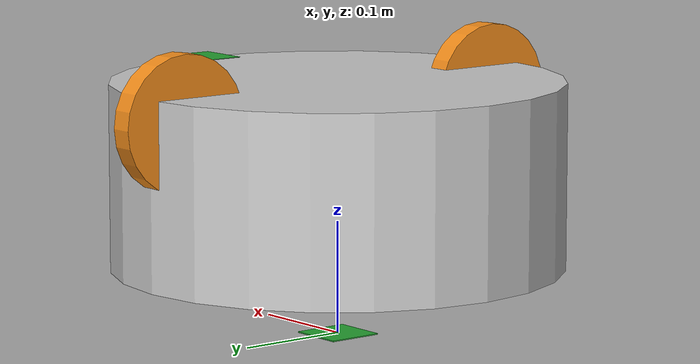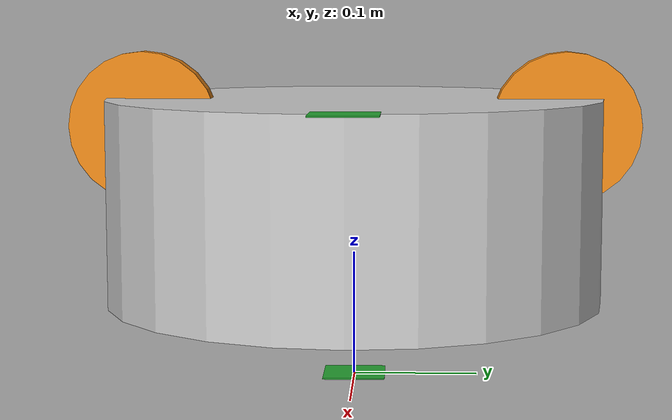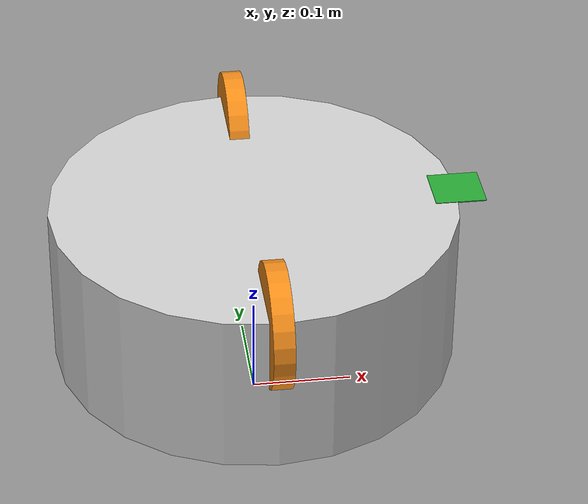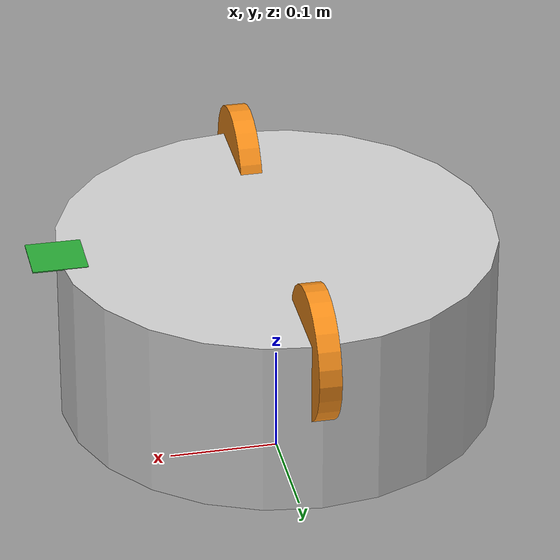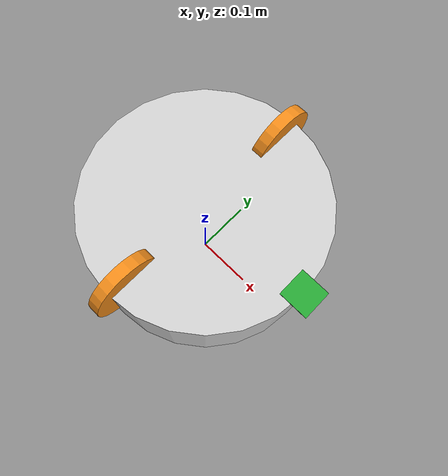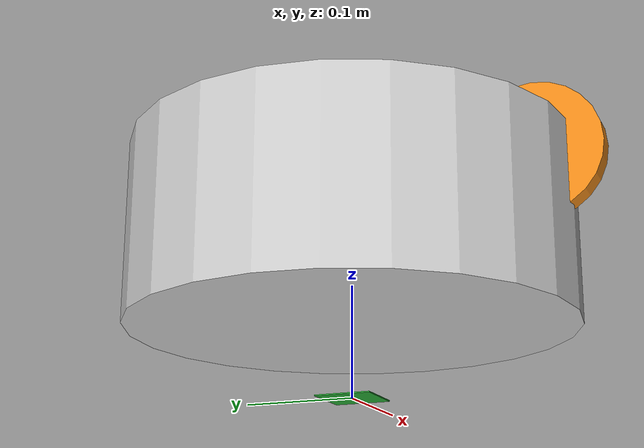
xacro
<?xml version="1.0"?>

<robot name="box_robot" xmlns:xacro="http://ros.org/wiki/xacro">

   <!-- Define a number of dimensions using properties -->
   <xacro:property name="torso_offset_x" value="0.0" />
   <xacro:property name="torso_offset_y" value="0.0" />
   <xacro:property name="torso_offset_z" value="0.23" /> <!--base_height/2+torso_height/2 -->

   <!-- Include all component files -->
   <xacro:include filename="$(find dashgo_description)/urdf/dashgobase/materials.urdf.xacro" />
   <xacro:include filename="$(find dashgo_description)/urdf/dashgobase/base.urdf.xacro" />
   <xacro:include filename="$(find dashgo_description)/urdf/dashgobase/torso.urdf.xacro" />

   <!-- Add the base and wheels -->
   <xacro:base name="base" color="Black"/>

   <!-- Attach the torso -->

  <link name="front_flag">
      <visual>
        <origin xyz="0 0 0" rpy="0 0 0" />
        <geometry>
          <box size="0.05 0.05 0.001" />
        </geometry>
        <material name="TransparentGreen" />
      </visual>
  </link>

  <joint name="front_point_flag" type="fixed">
    <origin xyz="0.2 0 ${base_length/2}" rpy="0 0 0" />
    <parent link="base_link"/>
    <child link="front_flag" />
  </joint>

</robot>

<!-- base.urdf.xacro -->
<robot name="base" xmlns:xacro="http://ros.org/wiki/xacro">

  <!-- Define a number of dimensions using properties -->
  <xacro:property name="base_length" value="0.165" />
  <xacro:property name="base_radius" value="0.20" />
  <xacro:property name="wheel_length" value="0.02" />
  <xacro:property name="wheel_radius" value="0.060" />
  <xacro:property name="wheel_offset_x" value="0" />
  <xacro:property name="wheel_offset_y" value="0.17" />
  <xacro:property name="wheel_offset_z" value="0.060" />

  <xacro:property name="PI" value="3.1415926" />

  <!-- define a wheel -->
  <xacro:macro name="wheel" params="suffix parent reflect color">
    <joint name="${parent}_${suffix}_wheel_joint" type="continuous">
      <!-- 轮子绕 y 轴滚动 -->
      <axis xyz="0 1 0"/>
      <limit effort="100" velocity="100"/>
      <origin xyz="${wheel_offset_x} ${reflect*wheel_offset_y} ${wheel_offset_z}" rpy="0 0 0"/>
      <parent link="${parent}_link"/>
      <child link="${parent}_${suffix}_wheel_link"/>
    </joint>

    <link name="${parent}_${suffix}_wheel_link">
      <visual>
        <!-- 让 cylinder 横过来（它默认轴在 z），所以绕 y 90° -->
        <origin xyz="0 0 0" rpy="0 1.57079632679 0"/>
        <geometry>
          <cylinder radius="${wheel_radius}" length="${wheel_length}"/>
        </geometry>
        <material name="${color}" />
      </visual>

      <collision>
        <origin xyz="0 0 0" rpy="0 1.57079632679 0"/>
        <geometry>
          <cylinder radius="${wheel_radius}" length="${wheel_length}"/>
        </geometry>
      </collision>

      <inertial>
        <mass value="0.3"/>
        <origin xyz="0 0 0" rpy="0 0 0"/>
        <inertia ixx="0.001" ixy="0" ixz="0" iyy="0.001" iyz="0" izz="0.001"/>
      </inertial>
    </link>
  </xacro:macro>

  <!-- The base xacro macro -->
  <xacro:macro name="base" params="name color">
    <link name="${name}_link">
      <visual>
          <origin xyz="0 0 0" rpy="0 0 0"/>
          <geometry>
              <cylinder length="${base_length}" radius="${base_radius}"/>
          </geometry>
          <material name="iRobot/LightGrey"/>
      </visual>
      <inertial>
        <mass value="5.0"/>
        <origin xyz="0 0 0" rpy="0 0 0"/>
        <inertia ixx="0.10" ixy="0" ixz="0" iyy="0.10" iyz="0" izz="0.10"/>
      </inertial>
      <collision>
          <origin xyz="0 0 0" rpy="0 0 0"/>
          <geometry>
              <cylinder length="${base_length}" radius="${base_radius}"/>
          </geometry>
      </collision>
    </link>

    <link name="${name}_footprint">

      <inertial>
        <mass value="0.0001"/>
        <origin xyz="0 0 0" rpy="0 0 0"/>
        <inertia ixx="1e-6" ixy="0" ixz="0" iyy="1e-6" iyz="0" izz="1e-6"/>
      </inertial>

      <!-- 小方块可视化 -->
      <visual>
        <origin xyz="0 0 0" rpy="0 0 0" />
        <geometry>
          <box size="0.05 0.05 0.001" />
        </geometry>
        <material name="TransparentGreen" />
      </visual>

    </link>

    <joint name="${name}_joint" type="fixed">
      <origin xyz="0 0 ${wheel_radius + base_length/2}" rpy="0 0 0" />
      <parent link="${name}_footprint"/>
      <child link="${name}_link" />
    </joint>

    <xacro:wheel parent="${name}" suffix="l" reflect="1" color="Orange"/>
    <xacro:wheel parent="${name}" suffix="r" reflect="-1" color="Orange"/>

    <!-- Add control plugin -->
    <gazebo>
      <plugin name="diff_drive" filename="libgazebo_ros_diff_drive.so">
        <leftJoint>base_l_wheel_joint</leftJoint>
        <rightJoint>base_r_wheel_joint</rightJoint>

        <wheelSeparation>${2*wheel_offset_y}</wheelSeparation>
        <wheelDiameter>${2*wheel_radius}</wheelDiameter>

        <robotBaseFrame>base_link</robotBaseFrame>
        <odometryFrame>odom</odometryFrame>

        <commandTopic>cmd_vel</commandTopic>
        <odometryTopic>odom</odometryTopic>

        <publishTf>true</publishTf>
        <publishWheelJointState>true</publishWheelJointState>

        <updateRate>50</updateRate>
        <torque>5</torque>
      </plugin>
    </gazebo>

    <gazebo reference="base_l_wheel_link">
      <mu1>1.0</mu1><mu2>1.0</mu2>
    </gazebo>
    <gazebo reference="base_r_wheel_link">
      <mu1>1.0</mu1><mu2>1.0</mu2>
    </gazebo>

  </xacro:macro>

   <!-- Add the drive wheels -->

</robot>
